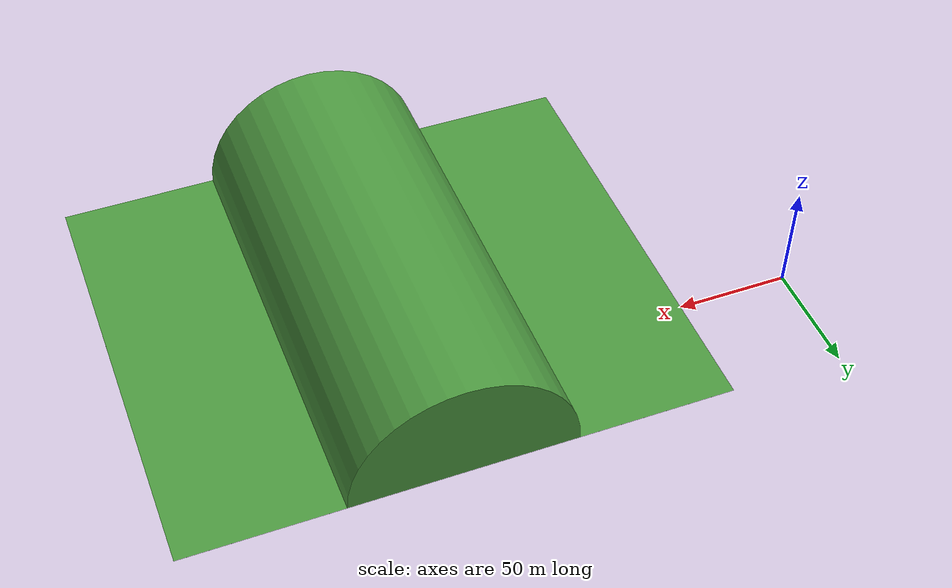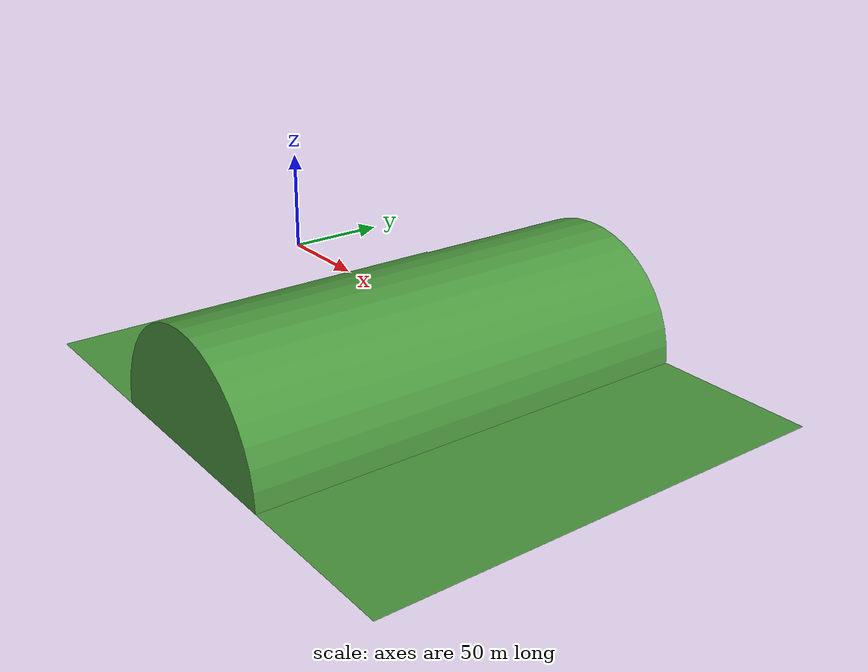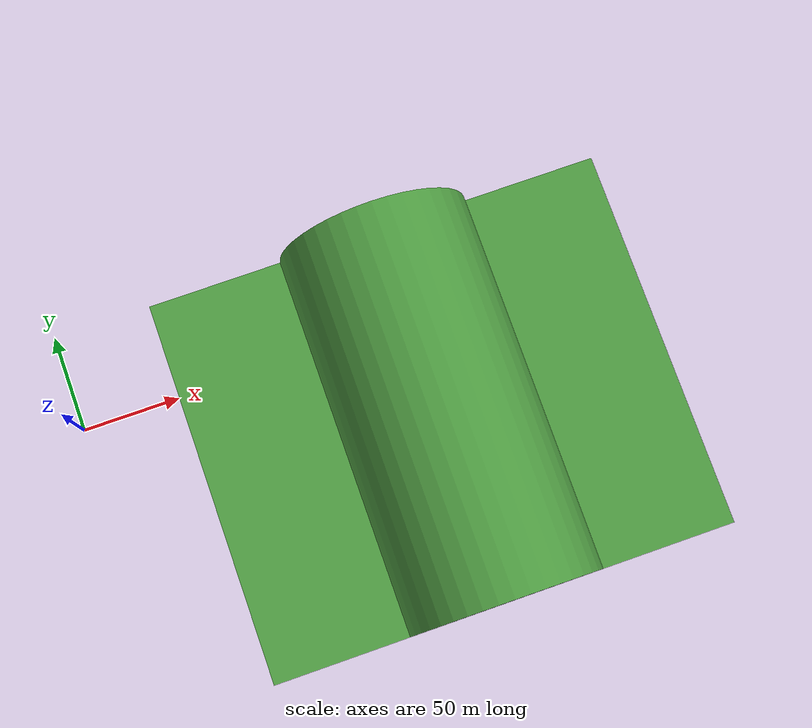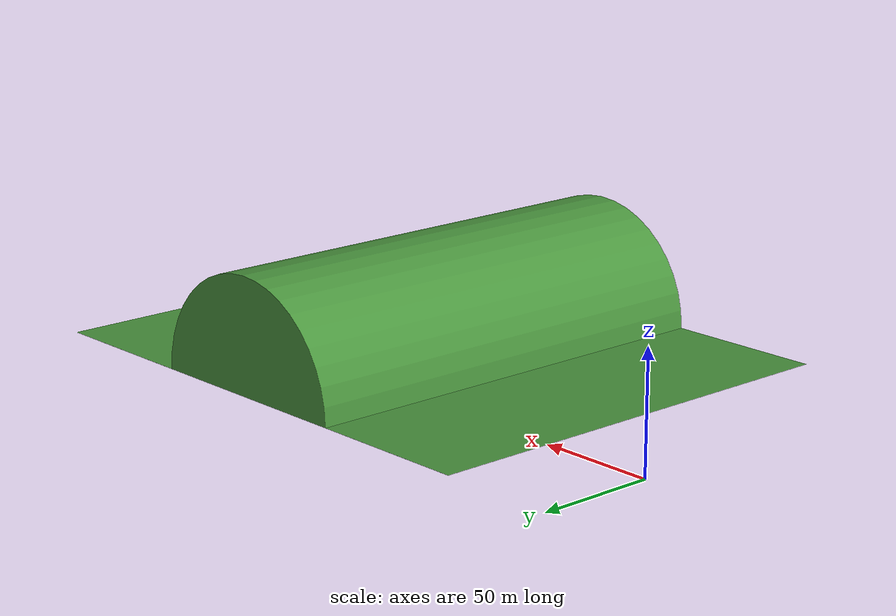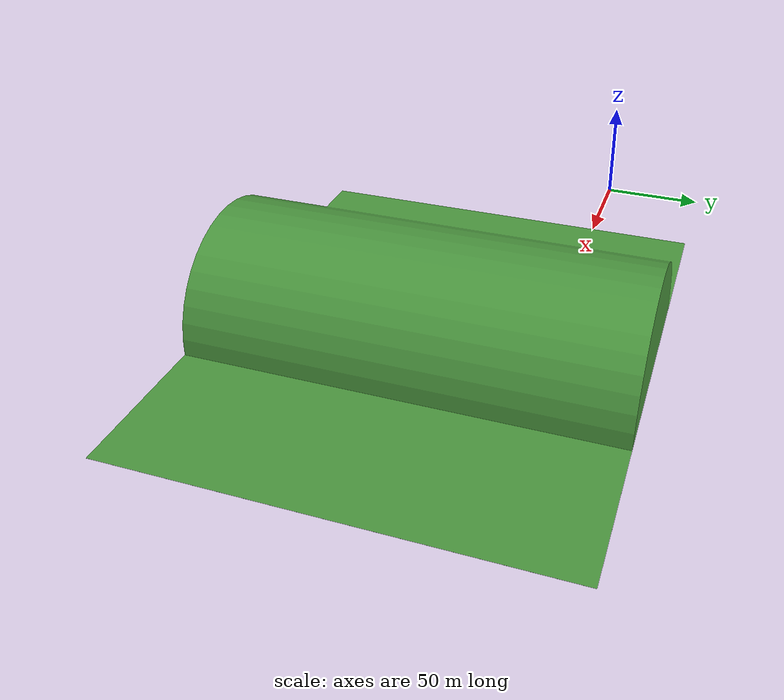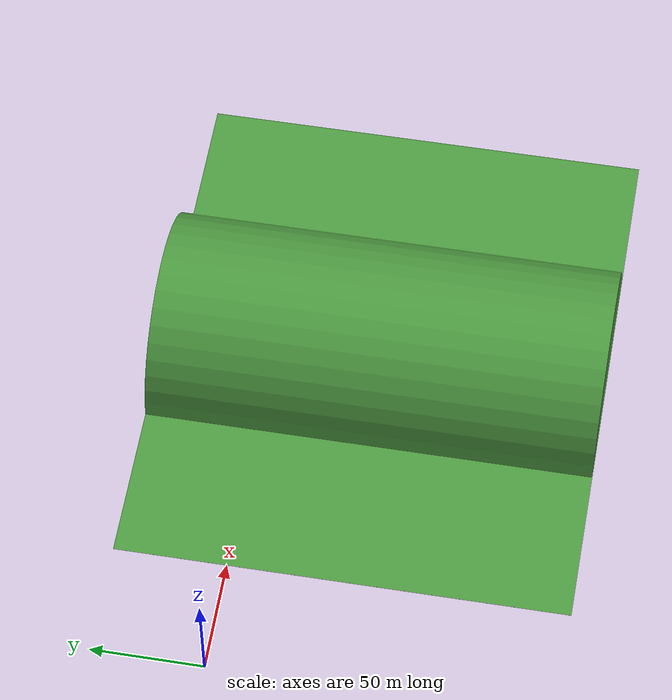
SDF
<?xml version="1.0"?>
<sdf version="1.4">
  <world name="default">
    <include>
      <uri>model://sun</uri>
    </include>
    <model name="hill">
      <pose>100 0 0  0 0 0</pose>
      <static>true</static>
      <link name="body">
        <visual name="visual">
          <geometry>
            <mesh><uri>model://nld_hill/hill_gzb_210210_50m.obj</uri></mesh>
          </geometry>
	  <material>
            <script>
              <name>Kitchen/Grass</name>
            </script>
          </material>
        </visual>
      </link>
    </model>
    <scene>
      <sky>
        <clouds>
          <speed>12</speed>
        </clouds>
      </sky>
    </scene>
  </world>
</sdf>
